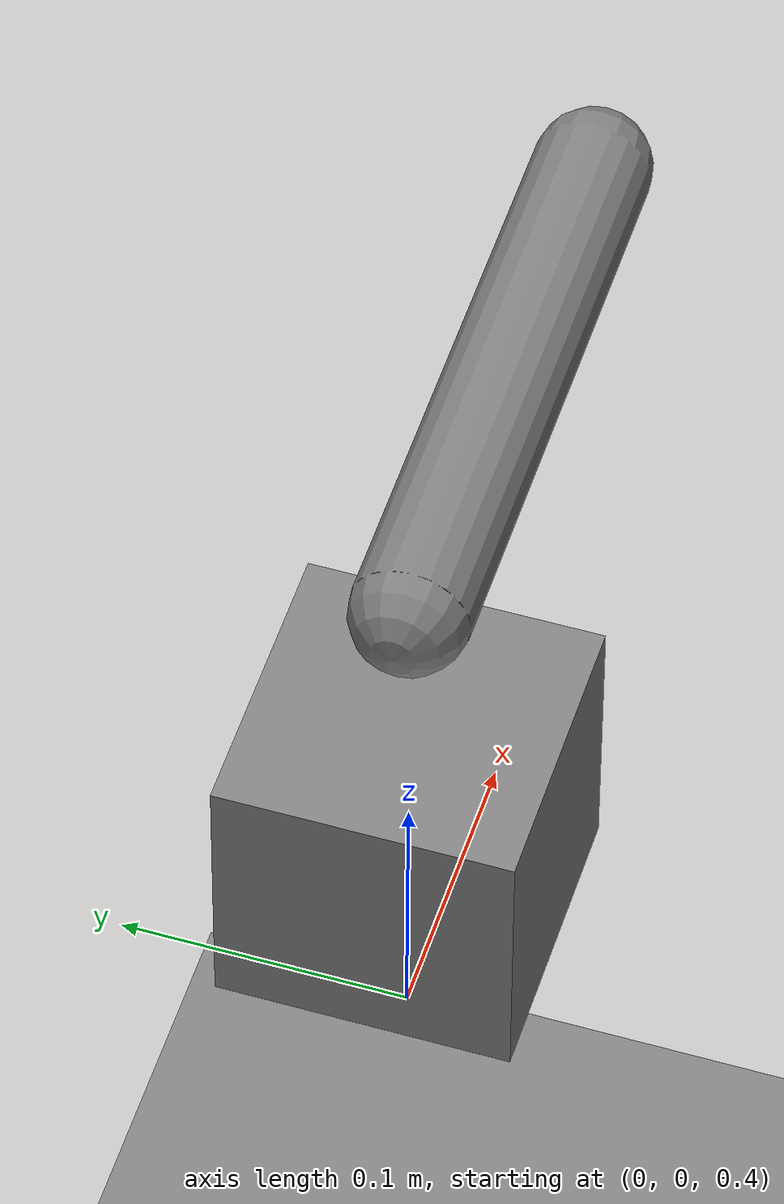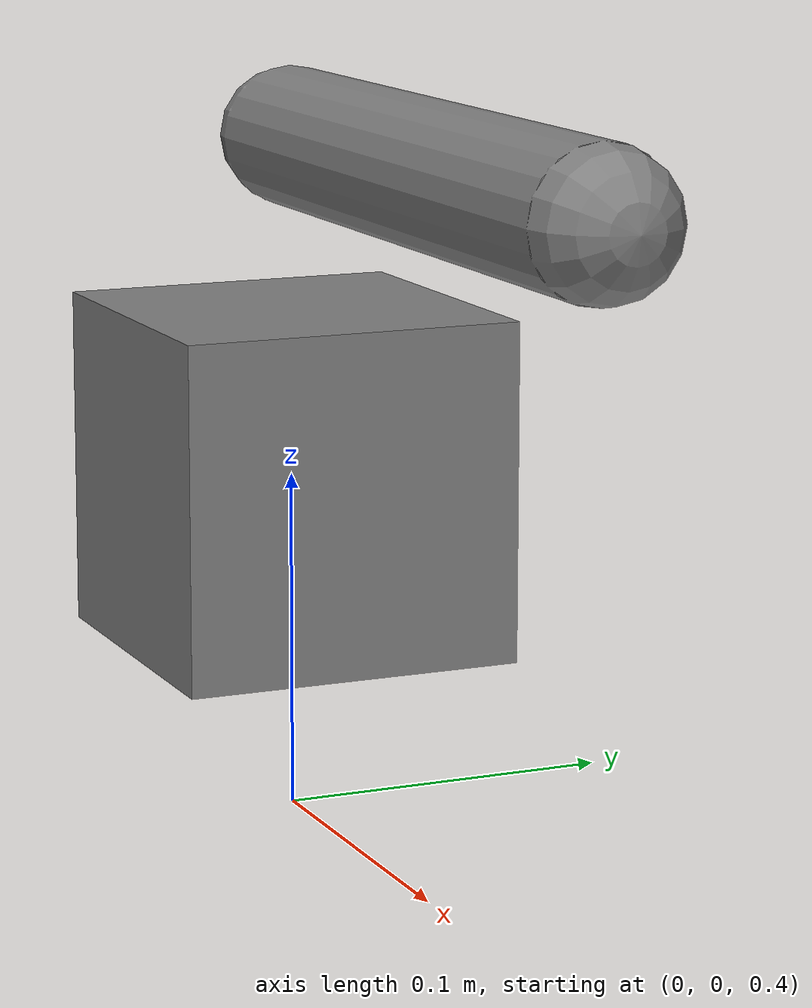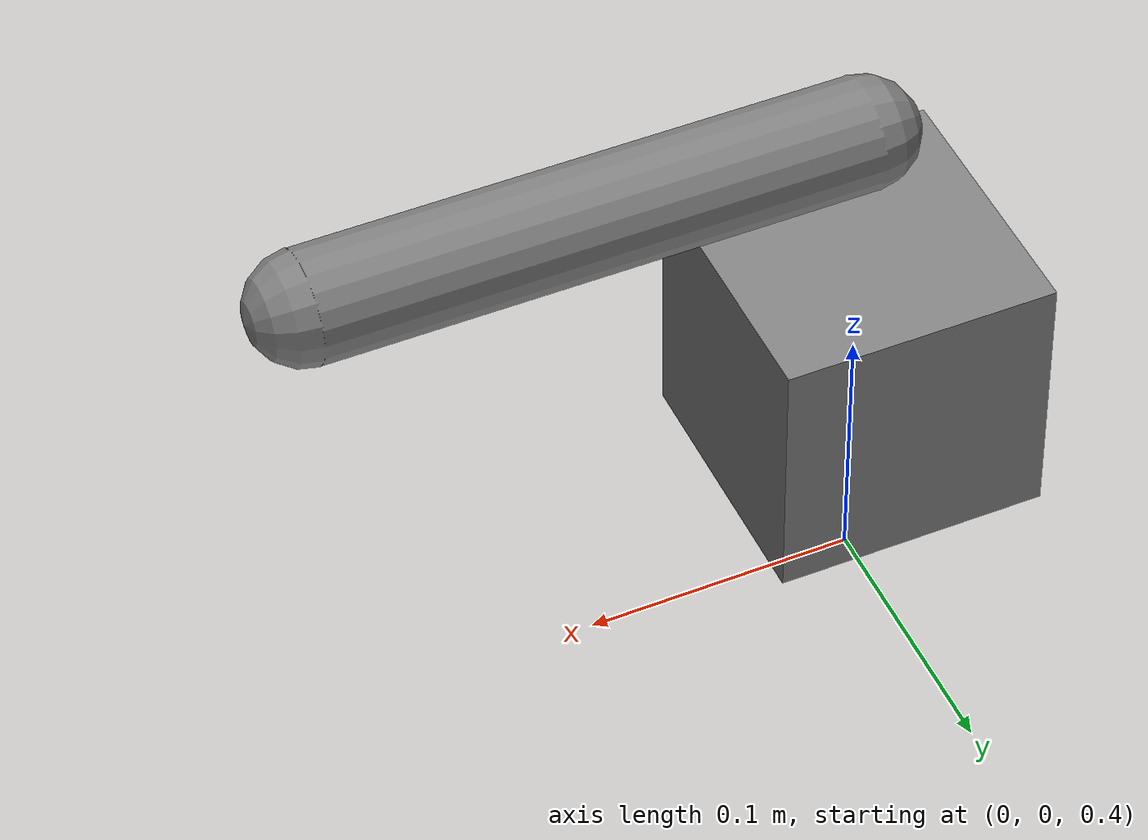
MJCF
<mujoco model="actuated_body">
  <option timestep="0.002" gravity="0 0 -9.81"/>
  <worldbody>
    <body name="floor_body" pos="0 0 0">
      <geom name="floor" type="plane" size="5 5 0.1"/>
    </body>
    <body name="base" pos="0 0 0.5">
      <geom type="box" size="0.05 0.05 0.05"/>
      <body name="arm" pos="0 0 0.1">
        <joint name="arm_joint" type="hinge" axis="0 1 0" range="-1.57 1.57"/>
        <geom type="capsule" size="0.02" fromto="0 0 0 0.2 0 0" mass="0.1"/>
      </body>
    </body>
  </worldbody>
  <actuator>
    <position name="arm_joint" joint="arm_joint" kp="200"/>
  </actuator>
</mujoco>
